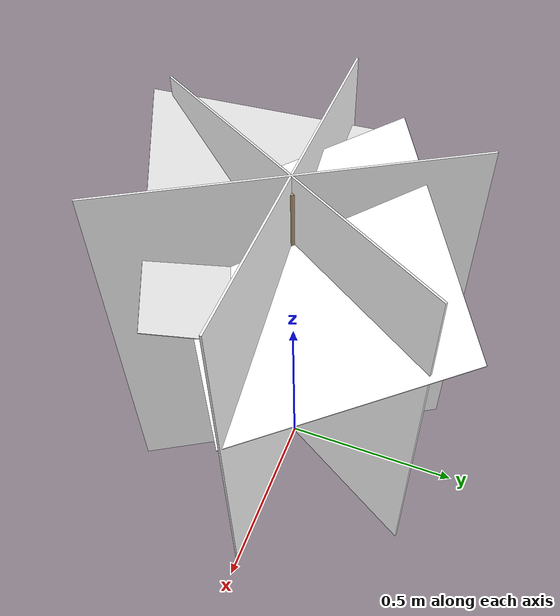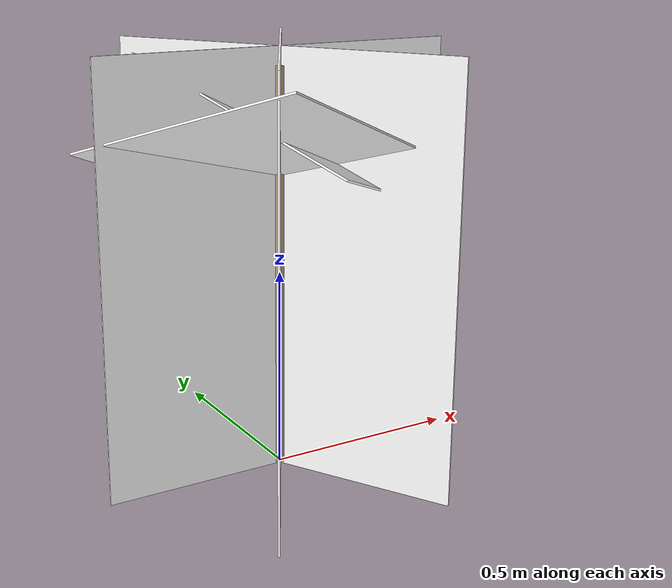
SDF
<?xml version="1.0" ?>
<sdf version="1.9">
  <model name="eggplant_plant">
    <static>true</static>

    <link name="plant_link">
      <pose>0 0 0 0 0 0</pose>

      <!-- Central Support Stake -->
      <visual name="support_stake">
        <pose>0 0 0.5 0 0 0</pose>
        <geometry><cylinder><radius>0.014</radius><length>1.0</length></cylinder></geometry>
        <material>
          <ambient>0.58 0.5 0.36 1</ambient>
          <diffuse>0.7 0.6 0.44 1</diffuse>
        </material>
      </visual>

      <!-- PHOTOREALISTIC TEXTURED CROSS-BILLBOARDS (3-Way Star)-->
      <!-- Plane 1: 0 degrees -->
      <visual name="foliage_plane_0deg">
        <pose>0 0 0.52 0 0 0</pose>
        <geometry>
          <box><size>0.92 0.005 1.05</size></box>
        </geometry>
        <material>
          <ambient>1.0 1.0 1.0 1.0</ambient>
          <diffuse>1.0 1.0 1.0 1.0</diffuse>
          <pbr>
            <metal>
              <albedo_map>model://eggplant_plant/materials/textures/eggplant_real.png</albedo_map>
              <roughness>0.5</roughness>
              <metalness>0.0</metalness>
            </metal>
          </pbr>
        </material>
      </visual>

      <!-- Plane 2: 60 degrees -->
      <visual name="foliage_plane_60deg">
        <pose>0 0 0.52 0 0 1.047</pose>
        <geometry>
          <box><size>0.92 0.005 1.05</size></box>
        </geometry>
        <material>
          <ambient>1.0 1.0 1.0 1.0</ambient>
          <diffuse>1.0 1.0 1.0 1.0</diffuse>
          <pbr>
            <metal>
              <albedo_map>model://eggplant_plant/materials/textures/eggplant_real.png</albedo_map>
              <roughness>0.5</roughness>
              <metalness>0.0</metalness>
            </metal>
          </pbr>
        </material>
      </visual>

      <!-- Plane 3: 120 degrees -->
      <visual name="foliage_plane_120deg">
        <pose>0 0 0.52 0 0 2.094</pose>
        <geometry>
          <box><size>0.92 0.005 1.05</size></box>
        </geometry>
        <material>
          <ambient>1.0 1.0 1.0 1.0</ambient>
          <diffuse>1.0 1.0 1.0 1.0</diffuse>
          <pbr>
            <metal>
              <albedo_map>model://eggplant_plant/materials/textures/eggplant_real.png</albedo_map>
              <roughness>0.5</roughness>
              <metalness>0.0</metalness>
            </metal>
          </pbr>
        </material>
      </visual>

      <!-- Top-Down Angled Canopy Quads (Optimized for Drone Aerial Camera) -->
      <visual name="aerial_canopy_quad_1">
        <pose>0.08 0.08 0.82 0.4 0.3 0.6</pose>
        <geometry><box><size>0.62 0.62 0.005</size></box></geometry>
        <material>
          <ambient>1.0 1.0 1.0 1.0</ambient>
          <diffuse>1.0 1.0 1.0 1.0</diffuse>
          <pbr>
            <metal>
              <albedo_map>model://eggplant_plant/materials/textures/eggplant_real.png</albedo_map>
              <roughness>0.5</roughness>
              <metalness>0.0</metalness>
            </metal>
          </pbr>
        </material>
      </visual>
      <visual name="aerial_canopy_quad_2">
        <pose>-0.08 -0.08 0.8 -0.4 -0.3 -1.1</pose>
        <geometry><box><size>0.62 0.62 0.005</size></box></geometry>
        <material>
          <ambient>1.0 1.0 1.0 1.0</ambient>
          <diffuse>1.0 1.0 1.0 1.0</diffuse>
          <pbr>
            <metal>
              <albedo_map>model://eggplant_plant/materials/textures/eggplant_real.png</albedo_map>
              <roughness>0.5</roughness>
              <metalness>0.0</metalness>
            </metal>
          </pbr>
        </material>
      </visual>

      <!-- Collision Volume -->
      <collision name="plant_collision">
        <pose>0 0 0.55 0 0 0</pose>
        <geometry><cylinder><radius>0.42</radius><length>1.1</length></cylinder></geometry>
      </collision>
    </link>
  </model>
</sdf>
